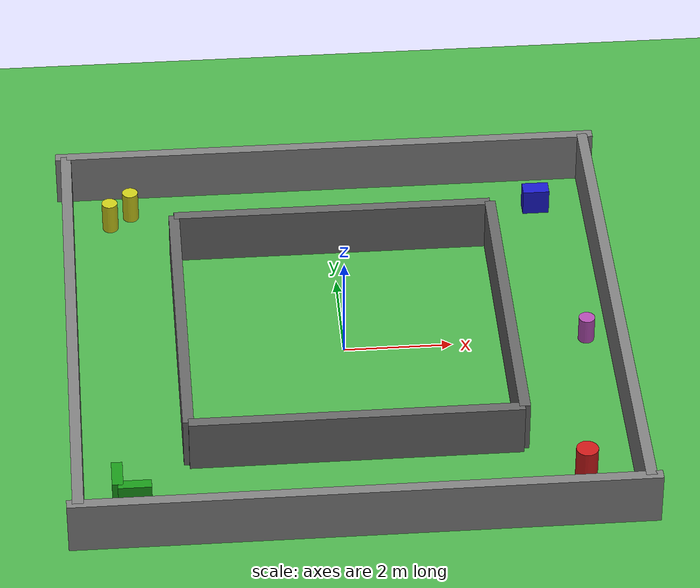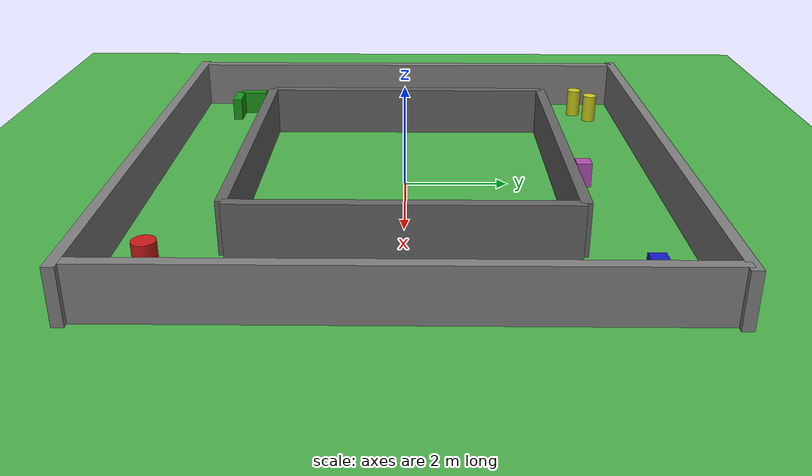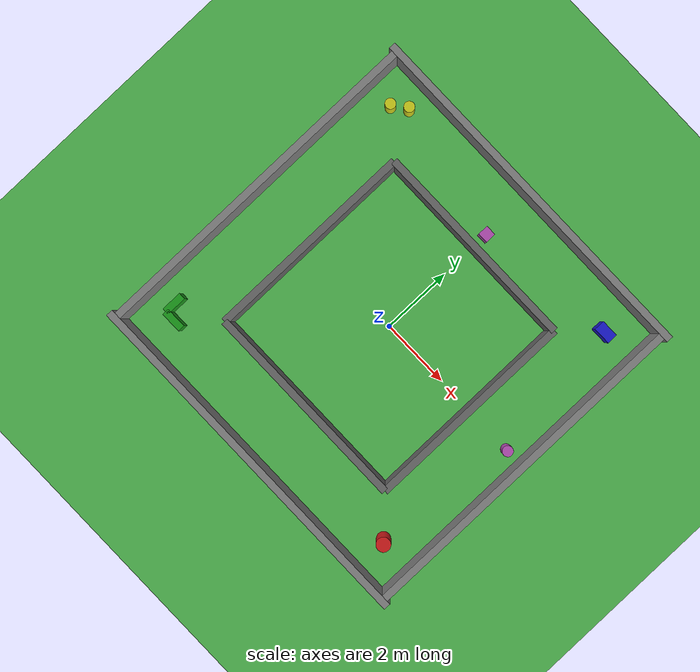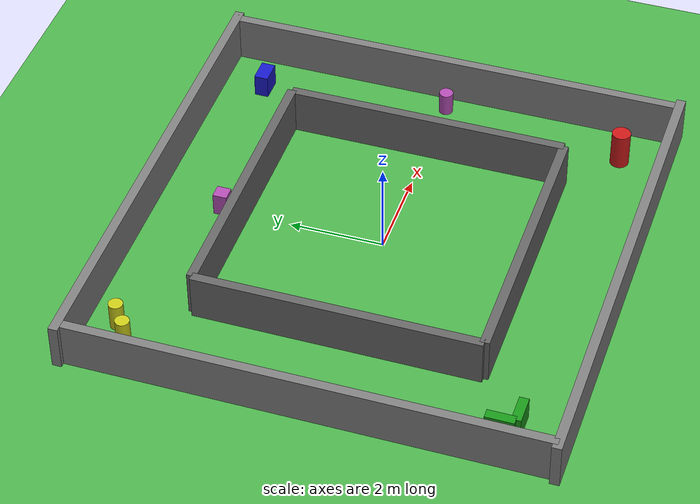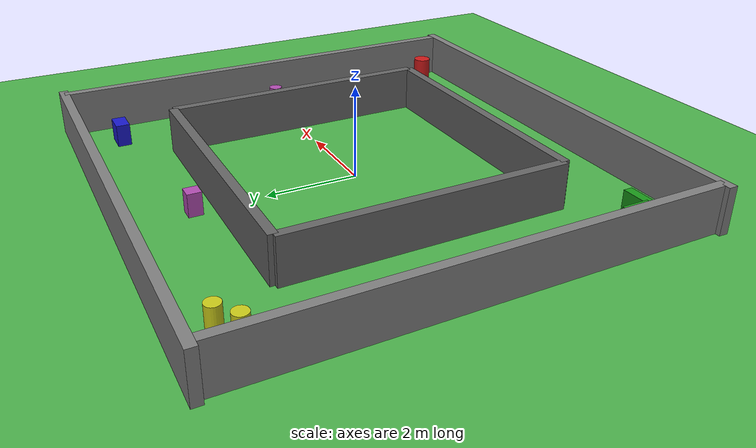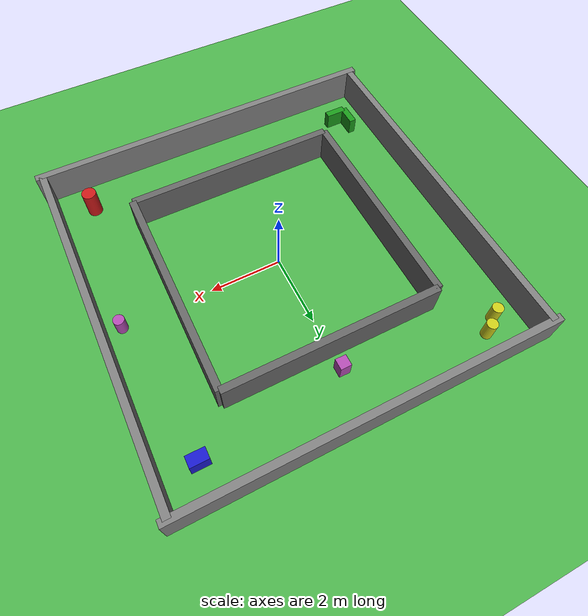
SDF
<?xml version="1.0" ?>
<sdf version="1.8">
  <world name="slam_test_world">

    <!-- 必須プラグイン                                                      -->
    <plugin filename="gz-sim-physics-system"
            name="gz::sim::systems::Physics">
    </plugin>
    <plugin filename="gz-sim-user-commands-system"
            name="gz::sim::systems::UserCommands">
    </plugin>
    <plugin filename="gz-sim-scene-broadcaster-system"
            name="gz::sim::systems::SceneBroadcaster">
    </plugin>
    <plugin filename="gz-sim-sensors-system"
            name="gz::sim::systems::Sensors">
      <render_engine>ogre2</render_engine>
    </plugin>

    <!-- 太陽光                                                              -->
    <light type="directional" name="sun">
      <cast_shadows>true</cast_shadows>
      <pose>0 0 10 0 0 0</pose>
      <diffuse>0.8 0.8 0.8 1</diffuse>
      <specular>0.2 0.2 0.2 1</specular>
      <attenuation>
        <range>1000</range>
        <constant>0.9</constant>
        <linear>0.01</linear>
        <quadratic>0.001</quadratic>
      </attenuation>
      <direction>-0.5 0.1 -0.9</direction>
    </light>

    <!-- 地面                                                                -->
    <model name="ground_plane">
      <static>true</static>
      <link name="link">
        <collision name="collision">
          <geometry>
            <plane>
              <normal>0 0 1</normal>
              <size>100 100</size>
            </plane>
          </geometry>
        </collision>
        <visual name="visual">
          <geometry>
            <plane>
              <normal>0 0 1</normal>
              <size>100 100</size>
            </plane>
          </geometry>
          <material>
            <ambient>0.3 0.7 0.3 1</ambient>
            <diffuse>0.3 0.7 0.3 1</diffuse>
            <specular>0.1 0.1 0.1 1</specular>
          </material>
        </visual>
      </link>
    </model>

    <!-- 外壁 (10m × 10m の正方形)                                          -->
    <!-- 壁の厚さ: 0.2m, 高さ: 1.0m -->

    <!-- 北壁 (Y = +5) -->
    <model name="outer_wall_north">
      <pose>0 5 0.5 0 0 0</pose>
      <static>true</static>
      <link name="link">
        <collision name="collision">
          <geometry><box><size>10.4 0.2 1.0</size></box></geometry>
        </collision>
        <visual name="visual">
          <geometry><box><size>10.4 0.2 1.0</size></box></geometry>
          <material>
            <ambient>0.5 0.5 0.5 1</ambient>
            <diffuse>0.5 0.5 0.5 1</diffuse>
          </material>
        </visual>
      </link>
    </model>

    <!-- 南壁 (Y = -5) -->
    <model name="outer_wall_south">
      <pose>0 -5 0.5 0 0 0</pose>
      <static>true</static>
      <link name="link">
        <collision name="collision">
          <geometry><box><size>10.4 0.2 1.0</size></box></geometry>
        </collision>
        <visual name="visual">
          <geometry><box><size>10.4 0.2 1.0</size></box></geometry>
          <material>
            <ambient>0.5 0.5 0.5 1</ambient>
            <diffuse>0.5 0.5 0.5 1</diffuse>
          </material>
        </visual>
      </link>
    </model>

    <!-- 東壁 (X = +5) -->
    <model name="outer_wall_east">
      <pose>5 0 0.5 0 0 0</pose>
      <static>true</static>
      <link name="link">
        <collision name="collision">
          <geometry><box><size>0.2 10.0 1.0</size></box></geometry>
        </collision>
        <visual name="visual">
          <geometry><box><size>0.2 10.0 1.0</size></box></geometry>
          <material>
            <ambient>0.5 0.5 0.5 1</ambient>
            <diffuse>0.5 0.5 0.5 1</diffuse>
          </material>
        </visual>
      </link>
    </model>

    <!-- 西壁 (X = -5) -->
    <model name="outer_wall_west">
      <pose>-5 0 0.5 0 0 0</pose>
      <static>true</static>
      <link name="link">
        <collision name="collision">
          <geometry><box><size>0.2 10.0 1.0</size></box></geometry>
        </collision>
        <visual name="visual">
          <geometry><box><size>0.2 10.0 1.0</size></box></geometry>
          <material>
            <ambient>0.5 0.5 0.5 1</ambient>
            <diffuse>0.5 0.5 0.5 1</diffuse>
          </material>
        </visual>
      </link>
    </model>

    <!-- 内壁 (6m × 6m の正方形)                                            -->

    <!-- 北内壁 (Y = +3) -->
    <model name="inner_wall_north">
      <pose>0 3 0.5 0 0 0</pose>
      <static>true</static>
      <link name="link">
        <collision name="collision">
          <geometry><box><size>6.0 0.2 1.0</size></box></geometry>
        </collision>
        <visual name="visual">
          <geometry><box><size>6.0 0.2 1.0</size></box></geometry>
          <material>
            <ambient>0.4 0.4 0.4 1</ambient>
            <diffuse>0.4 0.4 0.4 1</diffuse>
          </material>
        </visual>
      </link>
    </model>

    <!-- 南内壁 (Y = -3) -->
    <model name="inner_wall_south">
      <pose>0 -3 0.5 0 0 0</pose>
      <static>true</static>
      <link name="link">
        <collision name="collision">
          <geometry><box><size>6.0 0.2 1.0</size></box></geometry>
        </collision>
        <visual name="visual">
          <geometry><box><size>6.0 0.2 1.0</size></box></geometry>
          <material>
            <ambient>0.4 0.4 0.4 1</ambient>
            <diffuse>0.4 0.4 0.4 1</diffuse>
          </material>
        </visual>
      </link>
    </model>

    <!-- 東内壁 (X = +3) -->
    <model name="inner_wall_east">
      <pose>3 0 0.5 0 0 0</pose>
      <static>true</static>
      <link name="link">
        <collision name="collision">
          <geometry><box><size>0.2 6.0 1.0</size></box></geometry>
        </collision>
        <visual name="visual">
          <geometry><box><size>0.2 6.0 1.0</size></box></geometry>
          <material>
            <ambient>0.4 0.4 0.4 1</ambient>
            <diffuse>0.4 0.4 0.4 1</diffuse>
          </material>
        </visual>
      </link>
    </model>

    <!-- 西内壁 (X = -3) -->
    <model name="inner_wall_west">
      <pose>-3 0 0.5 0 0 0</pose>
      <static>true</static>
      <link name="link">
        <collision name="collision">
          <geometry><box><size>0.2 6.0 1.0</size></box></geometry>
        </collision>
        <visual name="visual">
          <geometry><box><size>0.2 6.0 1.0</size></box></geometry>
          <material>
            <ambient>0.4 0.4 0.4 1</ambient>
            <diffuse>0.4 0.4 0.4 1</diffuse>
          </material>
        </visual>
      </link>
    </model>

    <!-- コーナーランドマーク (各コーナーで異なる形状 → SLAM の非対称性確保) -->

    <!-- コーナーA (南東): 赤い円柱 -->
    <model name="landmark_se">
      <pose>4.0 -4.0 0.4 0 0 0</pose>
      <static>true</static>
      <link name="link">
        <collision name="collision">
          <geometry><cylinder><radius>0.2</radius><length>0.8</length></cylinder></geometry>
        </collision>
        <visual name="visual">
          <geometry><cylinder><radius>0.2</radius><length>0.8</length></cylinder></geometry>
          <material>
            <ambient>0.8 0.1 0.1 1</ambient>
            <diffuse>0.8 0.1 0.1 1</diffuse>
          </material>
        </visual>
      </link>
    </model>

    <!-- コーナーB (北東): 青いボックス -->
    <model name="landmark_ne">
      <pose>4.0 4.0 0.25 0 0 0</pose>
      <static>true</static>
      <link name="link">
        <collision name="collision">
          <geometry><box><size>0.5 0.3 0.5</size></box></geometry>
        </collision>
        <visual name="visual">
          <geometry><box><size>0.5 0.3 0.5</size></box></geometry>
          <material>
            <ambient>0.1 0.1 0.8 1</ambient>
            <diffuse>0.1 0.1 0.8 1</diffuse>
          </material>
        </visual>
      </link>
    </model>

    <!-- コーナーC (北西): 黄色い小さな円柱 2 本 -->
    <model name="landmark_nw_1">
      <pose>-4.2 4.0 0.3 0 0 0</pose>
      <static>true</static>
      <link name="link">
        <collision name="collision">
          <geometry><cylinder><radius>0.15</radius><length>0.6</length></cylinder></geometry>
        </collision>
        <visual name="visual">
          <geometry><cylinder><radius>0.15</radius><length>0.6</length></cylinder></geometry>
          <material>
            <ambient>0.8 0.8 0.1 1</ambient>
            <diffuse>0.8 0.8 0.1 1</diffuse>
          </material>
        </visual>
      </link>
    </model>

    <model name="landmark_nw_2">
      <pose>-3.8 4.3 0.3 0 0 0</pose>
      <static>true</static>
      <link name="link">
        <collision name="collision">
          <geometry><cylinder><radius>0.15</radius><length>0.6</length></cylinder></geometry>
        </collision>
        <visual name="visual">
          <geometry><cylinder><radius>0.15</radius><length>0.6</length></cylinder></geometry>
          <material>
            <ambient>0.8 0.8 0.1 1</ambient>
            <diffuse>0.8 0.8 0.1 1</diffuse>
          </material>
        </visual>
      </link>
    </model>

    <!-- コーナーD (南西): 緑の L字型ボックス 2 個 -->
    <model name="landmark_sw_1">
      <pose>-4.0 -4.0 0.25 0 0 0</pose>
      <static>true</static>
      <link name="link">
        <collision name="collision">
          <geometry><box><size>0.6 0.2 0.5</size></box></geometry>
        </collision>
        <visual name="visual">
          <geometry><box><size>0.6 0.2 0.5</size></box></geometry>
          <material>
            <ambient>0.1 0.6 0.1 1</ambient>
            <diffuse>0.1 0.6 0.1 1</diffuse>
          </material>
        </visual>
      </link>
    </model>

    <model name="landmark_sw_2">
      <pose>-4.3 -3.7 0.25 0 0 0</pose>
      <static>true</static>
      <link name="link">
        <collision name="collision">
          <geometry><box><size>0.2 0.6 0.5</size></box></geometry>
        </collision>
        <visual name="visual">
          <geometry><box><size>0.2 0.6 0.5</size></box></geometry>
          <material>
            <ambient>0.1 0.6 0.1 1</ambient>
            <diffuse>0.1 0.6 0.1 1</diffuse>
          </material>
        </visual>
      </link>
    </model>

    <!-- 廊下中間の特徴物 (Hallway Problem 防止)                             -->
    <!-- 長い直線廊下ではスキャンマッチングが曖昧になるため、                -->
    <!-- 各辺の中間に小さな凸凹を配置して特徴点を確保する                    -->

    <!-- 北廊下の中間: 内壁側に小さな突起 -->
    <model name="feature_north">
      <pose>0 3.5 0.25 0 0 0</pose>
      <static>true</static>
      <link name="link">
        <collision name="collision">
          <geometry><box><size>0.3 0.3 0.5</size></box></geometry>
        </collision>
        <visual name="visual">
          <geometry><box><size>0.3 0.3 0.5</size></box></geometry>
          <material>
            <ambient>0.7 0.3 0.7 1</ambient>
            <diffuse>0.7 0.3 0.7 1</diffuse>
          </material>
        </visual>
      </link>
    </model>

    <!-- 東廊下の中間: 外壁側に小さな円柱 -->
    <model name="feature_east">
      <pose>4.5 0 0.25 0 0 0</pose>
      <static>true</static>
      <link name="link">
        <collision name="collision">
          <geometry><cylinder><radius>0.15</radius><length>0.5</length></cylinder></geometry>
        </collision>
        <visual name="visual">
          <geometry><cylinder><radius>0.15</radius><length>0.5</length></cylinder></geometry>
          <material>
            <ambient>0.7 0.3 0.7 1</ambient>
            <diffuse>0.7 0.3 0.7 1</diffuse>
          </material>
        </visual>
      </link>
    </model>

  </world>
</sdf>
